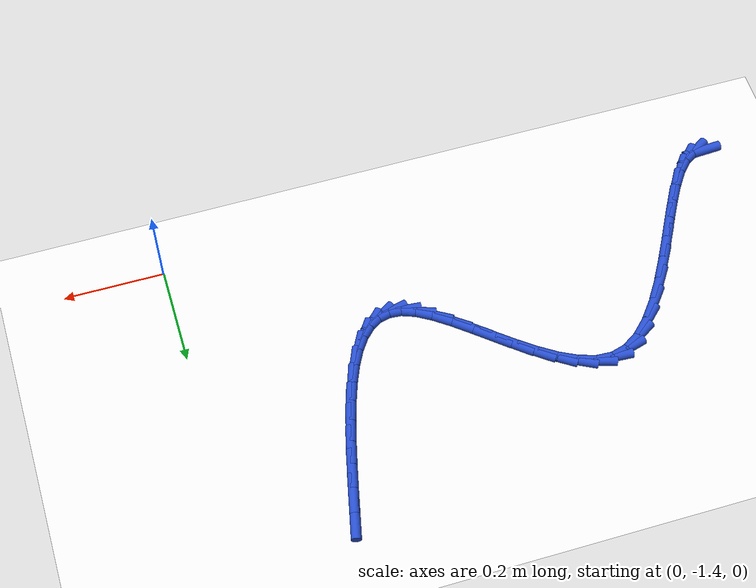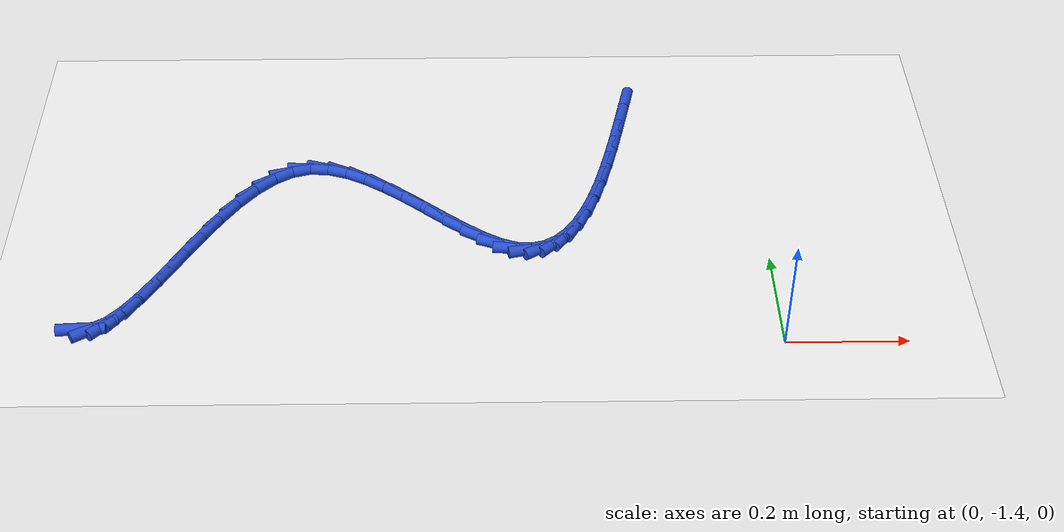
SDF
<sdf version="1.6">
 <world name="default">
  <model name="ground_plane">
   <static>1</static>
   <link name="link">
    <collision name="collision">
     <geometry><plane><normal>0 0 1</normal><size>100 100</size></plane></geometry>
     <surface><friction><ode><mu>100</mu><mu2>50</mu2></ode></friction></surface>
    </collision>
    <visual name="visual">
     <cast_shadows>0</cast_shadows>
     <geometry><plane><normal>0 0 1</normal><size>100 100</size></plane></geometry>
     <material>
      <script><uri>file://media/materials/scripts/gazebo.material</uri><name>Gazebo/WhiteGlow</name></script>
     </material>
    </visual>
   </link>
  </model>
  <model name="line">
   <link name="link_172">
    <pose>-1.1257424290230784 -1.365058698979568 0.01 0 1.57 0.05444791460085332</pose>
    <collision name="collision">
     <geometry><cylinder><radius>0.01</radius><length>0.08</length></cylinder></geometry>
    </collision>
    <visual name="visual">
     <material>
      <script><name>Gazebo/Blue</name><uri>file://media/materials/scripts/gazebo.material</uri></script>
     </material>
     <geometry><cylinder><radius>0.01</radius><length>0.08</length></cylinder></geometry>
    </visual>
   </link>
   <link name="link_173">
    <pose>-1.105685341653851 -1.363965551946854 0.01 0 1.57 0.5558986608542686</pose>
    <collision name="collision">
     <geometry><cylinder><radius>0.01</radius><length>0.08</length></cylinder></geometry>
    </collision>
    <visual name="visual">
     <material>
      <script><name>Gazebo/Blue</name><uri>file://media/materials/scripts/gazebo.material</uri></script>
     </material>
     <geometry><cylinder><radius>0.01</radius><length>0.08</length></cylinder></geometry>
    </visual>
   </link>
   <link name="link_174">
    <pose>-1.085379413431324 -1.351350479384298 0.01 0 1.57 0.8238462746267249</pose>
    <collision name="collision">
     <geometry><cylinder><radius>0.01</radius><length>0.08</length></cylinder></geometry>
    </collision>
    <visual name="visual">
     <material>
      <script><name>Gazebo/Blue</name><uri>file://media/materials/scripts/gazebo.material</uri></script>
     </material>
     <geometry><cylinder><radius>0.01</radius><length>0.08</length></cylinder></geometry>
    </visual>
   </link>
   <link name="link_175">
    <pose>-1.0647196971396304 -1.3290377386739292 0.01 0 1.57 0.9603339759726296</pose>
    <collision name="collision">
     <geometry><cylinder><radius>0.01</radius><length>0.08</length></cylinder></geometry>
    </collision>
    <visual name="visual">
     <material>
      <script><name>Gazebo/Blue</name><uri>file://media/materials/scripts/gazebo.material</uri></script>
     </material>
     <geometry><cylinder><radius>0.01</radius><length>0.08</length></cylinder></geometry>
    </visual>
   </link>
   <link name="link_176">
    <pose>-1.0436012455629058 -1.2988515871977777 0.01 0 1.57 1.03157591896567</pose>
    <collision name="collision">
     <geometry><cylinder><radius>0.01</radius><length>0.08</length></cylinder></geometry>
    </collision>
    <visual name="visual">
     <material>
      <script><name>Gazebo/Blue</name><uri>file://media/materials/scripts/gazebo.material</uri></script>
     </material>
     <geometry><cylinder><radius>0.01</radius><length>0.08</length></cylinder></geometry>
    </visual>
   </link>
   <link name="link_177">
    <pose>-1.0219191114852824 -1.262616282337873 0.01 0 1.57 1.0661019797220466</pose>
    <collision name="collision">
     <geometry><cylinder><radius>0.01</radius><length>0.08</length></cylinder></geometry>
    </collision>
    <visual name="visual">
     <material>
      <script><name>Gazebo/Blue</name><uri>file://media/materials/scripts/gazebo.material</uri></script>
     </material>
     <geometry><cylinder><radius>0.01</radius><length>0.08</length></cylinder></geometry>
    </visual>
   </link>
   <link name="link_178">
    <pose>-0.999568347690895 -1.2221560814762449 0.01 0 1.57 1.0760336746960426</pose>
    <collision name="collision">
     <geometry><cylinder><radius>0.01</radius><length>0.08</length></cylinder></geometry>
    </collision>
    <visual name="visual">
     <material>
      <script><name>Gazebo/Blue</name><uri>file://media/materials/scripts/gazebo.material</uri></script>
     </material>
     <geometry><cylinder><radius>0.01</radius><length>0.08</length></cylinder></geometry>
    </visual>
   </link>
   <link name="link_179">
    <pose>-0.9764440069638766 -1.1792952419949214 0.01 0 1.57 1.0659687281383645</pose>
    <collision name="collision">
     <geometry><cylinder><radius>0.01</radius><length>0.08</length></cylinder></geometry>
    </collision>
    <visual name="visual">
     <material>
      <script><name>Gazebo/Blue</name><uri>file://media/materials/scripts/gazebo.material</uri></script>
     </material>
     <geometry><cylinder><radius>0.01</radius><length>0.08</length></cylinder></geometry>
    </visual>
   </link>
   <link name="link_180">
    <pose>-0.9524411420883623 -1.1358580212759344 0.01 0 1.57 1.0361001628429793</pose>
    <collision name="collision">
     <geometry><cylinder><radius>0.01</radius><length>0.08</length></cylinder></geometry>
    </collision>
    <visual name="visual">
     <material>
      <script><name>Gazebo/Blue</name><uri>file://media/materials/scripts/gazebo.material</uri></script>
     </material>
     <geometry><cylinder><radius>0.01</radius><length>0.08</length></cylinder></geometry>
    </visual>
   </link>
   <link name="link_181">
    <pose>-0.9274548058484854 -1.0936686767013122 0.01 0 1.57 0.9828536499000855</pose>
    <collision name="collision">
     <geometry><cylinder><radius>0.01</radius><length>0.08</length></cylinder></geometry>
    </collision>
    <visual name="visual">
     <material>
      <script><name>Gazebo/Blue</name><uri>file://media/materials/scripts/gazebo.material</uri></script>
     </material>
     <geometry><cylinder><radius>0.01</radius><length>0.08</length></cylinder></geometry>
    </visual>
   </link>
   <link name="link_182">
    <pose>-0.9013800510283798 -1.054551465653085 0.01 0 1.57 0.8979922944781009</pose>
    <collision name="collision">
     <geometry><cylinder><radius>0.01</radius><length>0.08</length></cylinder></geometry>
    </collision>
    <visual name="visual">
     <material>
      <script><name>Gazebo/Blue</name><uri>file://media/materials/scripts/gazebo.material</uri></script>
     </material>
     <geometry><cylinder><radius>0.01</radius><length>0.08</length></cylinder></geometry>
    </visual>
   </link>
   <link name="link_183">
    <pose>-0.8741119304121796 -1.020330645513282 0.01 0 1.57 0.7663826861685519</pose>
    <collision name="collision">
     <geometry><cylinder><radius>0.01</radius><length>0.08</length></cylinder></geometry>
    </collision>
    <visual name="visual">
     <material>
      <script><name>Gazebo/Blue</name><uri>file://media/materials/scripts/gazebo.material</uri></script>
     </material>
     <geometry><cylinder><radius>0.01</radius><length>0.08</length></cylinder></geometry>
    </visual>
   </link>
   <link name="link_184">
    <pose>-0.8455454967840174 -0.9928304736639313 0.01 0 1.57 0.5639609335397482</pose>
    <collision name="collision">
     <geometry><cylinder><radius>0.01</radius><length>0.08</length></cylinder></geometry>
    </collision>
    <visual name="visual">
     <material>
      <script><name>Gazebo/Blue</name><uri>file://media/materials/scripts/gazebo.material</uri></script>
     </material>
     <geometry><cylinder><radius>0.01</radius><length>0.08</length></cylinder></geometry>
    </visual>
   </link>
   <link name="link_185">
    <pose>-0.815575802928029 -0.973875207487065 0.01 0 1.57 0.2676700268490965</pose>
    <collision name="collision">
     <geometry><cylinder><radius>0.01</radius><length>0.08</length></cylinder></geometry>
    </collision>
    <visual name="visual">
     <material>
      <script><name>Gazebo/Blue</name><uri>file://media/materials/scripts/gazebo.material</uri></script>
     </material>
     <geometry><cylinder><radius>0.01</radius><length>0.08</length></cylinder></geometry>
    </visual>
   </link>
   <link name="link_186">
    <pose>-0.7841037181081884 -0.9652439469892377 0.01 0 1.57 -0.05839518085638943</pose>
    <collision name="collision">
     <geometry><cylinder><radius>0.01</radius><length>0.08</length></cylinder></geometry>
    </collision>
    <visual name="visual">
     <material>
      <script><name>Gazebo/Blue</name><uri>file://media/materials/scripts/gazebo.material</uri></script>
     </material>
     <geometry><cylinder><radius>0.01</radius><length>0.08</length></cylinder></geometry>
    </visual>
   </link>
   <link name="link_187">
    <pose>-0.7512297561153729 -0.9671658129612097 0.01 0 1.57 -0.3082146205627795</pose>
    <collision name="collision">
     <geometry><cylinder><radius>0.01</radius><length>0.08</length></cylinder></geometry>
    </collision>
    <visual name="visual">
     <material>
      <script><name>Gazebo/Blue</name><uri>file://media/materials/scripts/gazebo.material</uri></script>
     </material>
     <geometry><cylinder><radius>0.01</radius><length>0.08</length></cylinder></geometry>
    </visual>
   </link>
   <link name="link_188">
    <pose>-0.7172994237325487 -0.977967875325401 0.01 0 1.57 -0.47695187121038723</pose>
    <collision name="collision">
     <geometry><cylinder><radius>0.01</radius><length>0.08</length></cylinder></geometry>
    </collision>
    <visual name="visual">
     <material>
      <script><name>Gazebo/Blue</name><uri>file://media/materials/scripts/gazebo.material</uri></script>
     </material>
     <geometry><cylinder><radius>0.01</radius><length>0.08</length></cylinder></geometry>
    </visual>
   </link>
   <link name="link_189">
    <pose>-0.6826732332052897 -0.9958607061691913 0.01 0 1.57 -0.5857513217429907</pose>
    <collision name="collision">
     <geometry><cylinder><radius>0.01</radius><length>0.08</length></cylinder></geometry>
    </collision>
    <visual name="visual">
     <material>
      <script><name>Gazebo/Blue</name><uri>file://media/materials/scripts/gazebo.material</uri></script>
     </material>
     <geometry><cylinder><radius>0.01</radius><length>0.08</length></cylinder></geometry>
    </visual>
   </link>
   <link name="link_190">
    <pose>-0.6477116967791673 -1.0190548775799613 0.01 0 1.57 -0.652666647683353</pose>
    <collision name="collision">
     <geometry><cylinder><radius>0.01</radius><length>0.08</length></cylinder></geometry>
    </collision>
    <visual name="visual">
     <material>
      <script><name>Gazebo/Blue</name><uri>file://media/materials/scripts/gazebo.material</uri></script>
     </material>
     <geometry><cylinder><radius>0.01</radius><length>0.08</length></cylinder></geometry>
    </visual>
   </link>
   <link name="link_191">
    <pose>-0.6127753266997539 -1.0457609616450914 0.01 0 1.57 -0.688494078137968</pose>
    <collision name="collision">
     <geometry><cylinder><radius>0.01</radius><length>0.08</length></cylinder></geometry>
    </collision>
    <visual name="visual">
     <material>
      <script><name>Gazebo/Blue</name><uri>file://media/materials/scripts/gazebo.material</uri></script>
     </material>
     <geometry><cylinder><radius>0.01</radius><length>0.08</length></cylinder></geometry>
    </visual>
   </link>
   <link name="link_192">
    <pose>-0.5782246352126205 -1.0741895304519624 0.01 0 1.57 -0.6980671484591718</pose>
    <collision name="collision">
     <geometry><cylinder><radius>0.01</radius><length>0.08</length></cylinder></geometry>
    </collision>
    <visual name="visual">
     <material>
      <script><name>Gazebo/Blue</name><uri>file://media/materials/scripts/gazebo.material</uri></script>
     </material>
     <geometry><cylinder><radius>0.01</radius><length>0.08</length></cylinder></geometry>
    </visual>
   </link>
   <link name="link_193">
    <pose>-0.5444201345633414 -1.1025511560879537 0.01 0 1.57 -0.6811787682396119</pose>
    <collision name="collision">
     <geometry><cylinder><radius>0.01</radius><length>0.08</length></cylinder></geometry>
    </collision>
    <visual name="visual">
     <material>
      <script><name>Gazebo/Blue</name><uri>file://media/materials/scripts/gazebo.material</uri></script>
     </material>
     <geometry><cylinder><radius>0.01</radius><length>0.08</length></cylinder></geometry>
    </visual>
   </link>
   <link name="link_194">
    <pose>-0.5117223369974878 -1.1290564106404462 0.01 0 1.57 -0.6318534888753973</pose>
    <collision name="collision">
     <geometry><cylinder><radius>0.01</radius><length>0.08</length></cylinder></geometry>
    </collision>
    <visual name="visual">
     <material>
      <script><name>Gazebo/Blue</name><uri>file://media/materials/scripts/gazebo.material</uri></script>
     </material>
     <geometry><cylinder><radius>0.01</radius><length>0.08</length></cylinder></geometry>
    </visual>
   </link>
   <link name="link_195">
    <pose>-0.48049175476063194 -1.15191586619682 0.01 0 1.57 -0.5349629969417081</pose>
    <collision name="collision">
     <geometry><cylinder><radius>0.01</radius><length>0.08</length></cylinder></geometry>
    </collision>
    <visual name="visual">
     <material>
      <script><name>Gazebo/Blue</name><uri>file://media/materials/scripts/gazebo.material</uri></script>
     </material>
     <geometry><cylinder><radius>0.01</radius><length>0.08</length></cylinder></geometry>
    </visual>
   </link>
   <link name="link_196">
    <pose>-0.4510889000983463 -1.1693400948444563 0.01 0 1.57 -0.35887274182440754</pose>
    <collision name="collision">
     <geometry><cylinder><radius>0.01</radius><length>0.08</length></cylinder></geometry>
    </collision>
    <visual name="visual">
     <material>
      <script><name>Gazebo/Blue</name><uri>file://media/materials/scripts/gazebo.material</uri></script>
     </material>
     <geometry><cylinder><radius>0.01</radius><length>0.08</length></cylinder></geometry>
    </visual>
   </link>
   <link name="link_197">
    <pose>-0.4238720055160136 -1.1795495991710516 0.01 0 1.57 -0.08189005394463961</pose>
    <collision name="collision">
     <geometry><cylinder><radius>0.01</radius><length>0.08</length></cylinder></geometry>
    </collision>
    <visual name="visual">
     <material>
      <script><name>Gazebo/Blue</name><uri>file://media/materials/scripts/gazebo.material</uri></script>
     </material>
     <geometry><cylinder><radius>0.01</radius><length>0.08</length></cylinder></geometry>
    </visual>
   </link>
   <link name="link_198">
    <pose>-0.3990098527134238 -1.181590125489242 0.01 0 1.57 0.2443050039384947</pose>
    <collision name="collision">
     <geometry><cylinder><radius>0.01</radius><length>0.08</length></cylinder></geometry>
    </collision>
    <visual name="visual">
     <material>
      <script><name>Gazebo/Blue</name><uri>file://media/materials/scripts/gazebo.material</uri></script>
     </material>
     <geometry><cylinder><radius>0.01</radius><length>0.08</length></cylinder></geometry>
    </visual>
   </link>
   <link name="link_199">
    <pose>-0.37634246162123935 -1.175939499463971 0.01 0 1.57 0.5517877089279651</pose>
    <collision name="collision">
     <geometry><cylinder><radius>0.01</radius><length>0.08</length></cylinder></geometry>
    </collision>
    <visual name="visual">
     <material>
      <script><name>Gazebo/Blue</name><uri>file://media/materials/scripts/gazebo.material</uri></script>
     </material>
     <geometry><cylinder><radius>0.01</radius><length>0.08</length></cylinder></geometry>
    </visual>
   </link>
   <link name="link_200">
    <pose>-0.355677028096777 -1.1632185277333724 0.01 0 1.57 0.7936613783297283</pose>
    <collision name="collision">
     <geometry><cylinder><radius>0.01</radius><length>0.08</length></cylinder></geometry>
    </collision>
    <visual name="visual">
     <material>
      <script><name>Gazebo/Blue</name><uri>file://media/materials/scripts/gazebo.material</uri></script>
     </material>
     <geometry><cylinder><radius>0.01</radius><length>0.08</length></cylinder></geometry>
    </visual>
   </link>
   <link name="link_201">
    <pose>-0.3368207479973528 -1.144048016935581 0.01 0 1.57 0.9670721115765926</pose>
    <collision name="collision">
     <geometry><cylinder><radius>0.01</radius><length>0.08</length></cylinder></geometry>
    </collision>
    <visual name="visual">
     <material>
      <script><name>Gazebo/Blue</name><uri>file://media/materials/scripts/gazebo.material</uri></script>
     </material>
     <geometry><cylinder><radius>0.01</radius><length>0.08</length></cylinder></geometry>
    </visual>
   </link>
   <link name="link_202">
    <pose>-0.31958081718028464 -1.1190487737087305 0.01 0 1.57 1.0884497456602555</pose>
    <collision name="collision">
     <geometry><cylinder><radius>0.01</radius><length>0.08</length></cylinder></geometry>
    </collision>
    <visual name="visual">
     <material>
      <script><name>Gazebo/Blue</name><uri>file://media/materials/scripts/gazebo.material</uri></script>
     </material>
     <geometry><cylinder><radius>0.01</radius><length>0.08</length></cylinder></geometry>
    </visual>
   </link>
   <link name="link_203">
    <pose>-0.3037644315028886 -1.0888416046909553 0.01 0 1.57 1.1738515261324474</pose>
    <collision name="collision">
     <geometry><cylinder><radius>0.01</radius><length>0.08</length></cylinder></geometry>
    </collision>
    <visual name="visual">
     <material>
      <script><name>Gazebo/Blue</name><uri>file://media/materials/scripts/gazebo.material</uri></script>
     </material>
     <geometry><cylinder><radius>0.01</radius><length>0.08</length></cylinder></geometry>
    </visual>
   </link>
   <link name="link_204">
    <pose>-0.28917878682248155 -1.0540473165203894 0.01 0 1.57 1.234546827754011</pose>
    <collision name="collision">
     <geometry><cylinder><radius>0.01</radius><length>0.08</length></cylinder></geometry>
    </collision>
    <visual name="visual">
     <material>
      <script><name>Gazebo/Blue</name><uri>file://media/materials/scripts/gazebo.material</uri></script>
     </material>
     <geometry><cylinder><radius>0.01</radius><length>0.08</length></cylinder></geometry>
    </visual>
   </link>
   <link name="link_205">
    <pose>-0.27563107899638023 -1.0152867158351673 0.01 0 1.57 1.2777988550895167</pose>
    <collision name="collision">
     <geometry><cylinder><radius>0.01</radius><length>0.08</length></cylinder></geometry>
    </collision>
    <visual name="visual">
     <material>
      <script><name>Gazebo/Blue</name><uri>file://media/materials/scripts/gazebo.material</uri></script>
     </material>
     <geometry><cylinder><radius>0.01</radius><length>0.08</length></cylinder></geometry>
    </visual>
   </link>
   <link name="link_206">
    <pose>-0.2629285038819009 -0.9731806092734223 0.01 0 1.57 1.3082089948485753</pose>
    <collision name="collision">
     <geometry><cylinder><radius>0.01</radius><length>0.08</length></cylinder></geometry>
    </collision>
    <visual name="visual">
     <material>
      <script><name>Gazebo/Blue</name><uri>file://media/materials/scripts/gazebo.material</uri></script>
     </material>
     <geometry><cylinder><radius>0.01</radius><length>0.08</length></cylinder></geometry>
    </visual>
   </link>
   <link name="link_207">
    <pose>-0.25087825733636104 -0.92834980347329 0.01 0 1.57 1.328686322394603</pose>
    <collision name="collision">
     <geometry><cylinder><radius>0.01</radius><length>0.08</length></cylinder></geometry>
    </collision>
    <visual name="visual">
     <material>
      <script><name>Gazebo/Blue</name><uri>file://media/materials/scripts/gazebo.material</uri></script>
     </material>
     <geometry><cylinder><radius>0.01</radius><length>0.08</length></cylinder></geometry>
    </visual>
   </link>
   <link name="link_208">
    <pose>-0.23928753521707702 -0.8814151050729041 0.01 0 1.57 1.3410450282871156</pose>
    <collision name="collision">
     <geometry><cylinder><radius>0.01</radius><length>0.08</length></cylinder></geometry>
    </collision>
    <visual name="visual">
     <material>
      <script><name>Gazebo/Blue</name><uri>file://media/materials/scripts/gazebo.material</uri></script>
     </material>
     <geometry><cylinder><radius>0.01</radius><length>0.08</length></cylinder></geometry>
    </visual>
   </link>
   <link name="link_209">
    <pose>-0.2279635333813656 -0.832997320710399 0.01 0 1.57 1.3463537881898633</pose>
    <collision name="collision">
     <geometry><cylinder><radius>0.01</radius><length>0.08</length></cylinder></geometry>
    </collision>
    <visual name="visual">
     <material>
      <script><name>Gazebo/Blue</name><uri>file://media/materials/scripts/gazebo.material</uri></script>
     </material>
     <geometry><cylinder><radius>0.01</radius><length>0.08</length></cylinder></geometry>
    </visual>
   </link>
   <link name="link_210">
    <pose>-0.21671344768654321 -0.7837172570239073 0.01 0 1.57 1.3451303384250832</pose>
    <collision name="collision">
     <geometry><cylinder><radius>0.01</radius><length>0.08</length></cylinder></geometry>
    </collision>
    <visual name="visual">
     <material>
      <script><name>Gazebo/Blue</name><uri>file://media/materials/scripts/gazebo.material</uri></script>
     </material>
     <geometry><cylinder><radius>0.01</radius><length>0.08</length></cylinder></geometry>
    </visual>
   </link>
  </model>
 </world>
</sdf>
